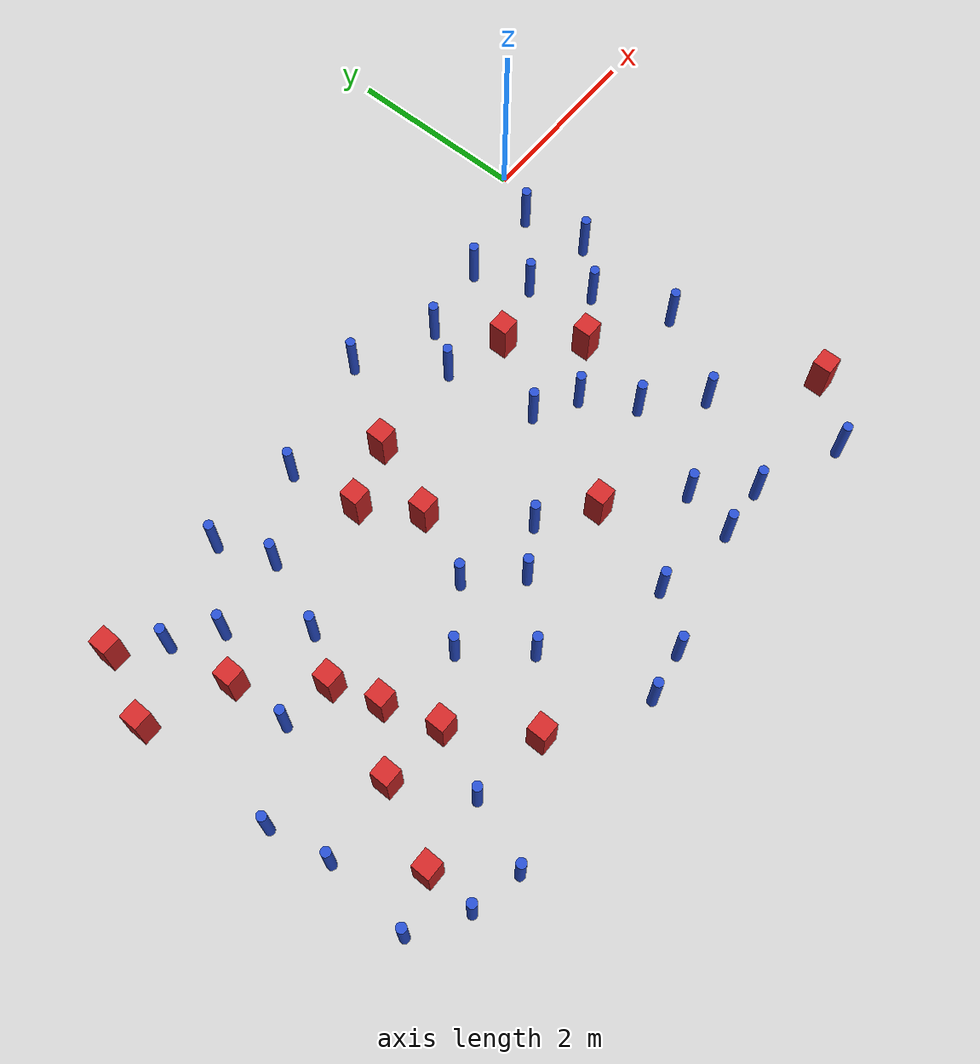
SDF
<sdf version="1.6">
 <world name="default">
  <model name="ground_plane">
   <static>1</static>
   <link name="link">
    <collision name="collision">
     <geometry><plane><normal>0 0 1</normal><size>100 100</size></plane></geometry>
     <surface><friction><ode><mu>100</mu><mu2>50</mu2></ode></friction></surface>
    </collision>
    <visual name="visual">
     <cast_shadows>0</cast_shadows>
     <geometry><plane><normal>0 0 1</normal><size>100 100</size></plane></geometry>
     <material>
      <ambient>1.0 1.0 1.0 1.0</ambient>
      <diffuse>0.8 0.8 0.8 1.0</diffuse>
      <specular>0.01 0.01 0.01 1.000000</specular>
     </material>
    </visual>
   </link>
  </model>
  <model name="square_post_obstacle0">
   <static>true</static>
   <pose>-1.67822141153 -1.31665792299 -6.11067671241e-07 -5.50515727128e-06 -8.79689657224e-07 2.37013304536e-05</pose>
   <link name="link">
    <pose>0 0 0.25 0 -0 0</pose>
    <inertial>
     <mass>100</mass>
     <inertia>
      <ixx>0.166667</ixx>
      <ixy>0</ixy>
      <ixz>0</ixz>
      <iyy>0.166667</iyy>
      <iyz>0</iyz>
      <izz>0.166667</izz>
     </inertia>
    </inertial>
    <collision name="collision"><geometry><box><size>.2 .2 .5</size></box></geometry></collision>
    <visual name="visual">
     <geometry><box><size>.2 .2 .5</size></box></geometry>
     <material>
      <script><name>Gazebo/Red</name><uri>file://media/materials/scripts/gazebo.material</uri></script>
     </material>
    </visual>
   </link>
  </model>
  <model name="pole_obstacle5">
   <static>true</static>
   <pose>-6.22073682573 -0.947302004882 -9.47619616065e-06 5.49618799737e-07 2.36310414061e-07 -1.550905348e-07</pose>
   <link name="link">
    <pose>0 0 0.3 0 -0 0</pose>
    <inertial>
     <mass>1</mass>
     <inertia><ixx>0.145833</ixx><ixy>0</ixy><ixz>0</ixz><iyy>0.145833</iyy><iyz>0</iyz><izz>0.125</izz></inertia>
    </inertial>
    <collision name="collision">
     <geometry><cylinder><radius>0.05</radius><length>.6</length></cylinder></geometry>
    </collision>
    <visual name="visual">
     <geometry><cylinder><radius>0.05</radius><length>.6</length></cylinder></geometry>
     <material>
      <script><name>Gazebo/Blue</name><uri>file://media/materials/scripts/gazebo.material</uri></script>
     </material>
    </visual>
   </link>
  </model>
  <model name="square_post_obstacle6">
   <static>true</static>
   <pose>-5.55545199859 -2.38299773573 -6.11067671241e-07 -5.50515727128e-06 -8.79689657224e-07 2.37013304536e-05</pose>
   <link name="link">
    <pose>0 0 0.25 0 -0 0</pose>
    <inertial>
     <mass>100</mass>
     <inertia>
      <ixx>0.166667</ixx>
      <ixy>0</ixy>
      <ixz>0</ixz>
      <iyy>0.166667</iyy>
      <iyz>0</iyz>
      <izz>0.166667</izz>
     </inertia>
    </inertial>
    <collision name="collision"><geometry><box><size>.2 .2 .5</size></box></geometry></collision>
    <visual name="visual">
     <geometry><box><size>.2 .2 .5</size></box></geometry>
     <material>
      <script><name>Gazebo/Red</name><uri>file://media/materials/scripts/gazebo.material</uri></script>
     </material>
    </visual>
   </link>
  </model>
  <model name="pole_obstacle20">
   <static>true</static>
   <pose>-1.88740554984 -3.82218988211 -9.47619616065e-06 5.49618799737e-07 2.36310414062e-07 -1.55090534798e-07</pose>
   <link name="link">
    <pose>0 0 0.3 0 -0 0</pose>
    <inertial>
     <mass>1</mass>
     <inertia><ixx>0.145833</ixx><ixy>0</ixy><ixz>0</ixz><iyy>0.145833</iyy><iyz>0</iyz><izz>0.125</izz></inertia>
    </inertial>
    <collision name="collision">
     <geometry><cylinder><radius>0.05</radius><length>.6</length></cylinder></geometry>
    </collision>
    <visual name="visual">
     <geometry><cylinder><radius>0.05</radius><length>.6</length></cylinder></geometry>
     <material>
      <script><name>Gazebo/Blue</name><uri>file://media/materials/scripts/gazebo.material</uri></script>
     </material>
    </visual>
   </link>
  </model>
  <model name="pole_obstacle34">
   <static>true</static>
   <pose>-4.98188013395 -1.15456743274 -9.47619616065e-06 5.49618799738e-07 2.36310414071e-07 -1.55090534796e-07</pose>
   <link name="link">
    <pose>0 0 0.3 0 -0 0</pose>
    <inertial>
     <mass>1</mass>
     <inertia><ixx>0.145833</ixx><ixy>0</ixy><ixz>0</ixz><iyy>0.145833</iyy><iyz>0</iyz><izz>0.125</izz></inertia>
    </inertial>
    <collision name="collision">
     <geometry><cylinder><radius>0.05</radius><length>.6</length></cylinder></geometry>
    </collision>
    <visual name="visual">
     <geometry><cylinder><radius>0.05</radius><length>.6</length></cylinder></geometry>
     <material>
      <script><name>Gazebo/Blue</name><uri>file://media/materials/scripts/gazebo.material</uri></script>
     </material>
    </visual>
   </link>
  </model>
  <model name="pole_obstacle36">
   <static>true</static>
   <pose>-4.17174899389 -0.638260095286 -9.47619616065e-06 5.49618799737e-07 2.36310414061e-07 -1.550905348e-07</pose>
   <link name="link">
    <pose>0 0 0.3 0 -0 0</pose>
    <inertial>
     <mass>1</mass>
     <inertia><ixx>0.145833</ixx><ixy>0</ixy><ixz>0</ixz><iyy>0.145833</iyy><iyz>0</iyz><izz>0.125</izz></inertia>
    </inertial>
    <collision name="collision">
     <geometry><cylinder><radius>0.05</radius><length>.6</length></cylinder></geometry>
    </collision>
    <visual name="visual">
     <geometry><cylinder><radius>0.05</radius><length>.6</length></cylinder></geometry>
     <material>
      <script><name>Gazebo/Blue</name><uri>file://media/materials/scripts/gazebo.material</uri></script>
     </material>
    </visual>
   </link>
  </model>
  <model name="pole_obstacle37">
   <static>true</static>
   <pose>-0.537551971657 -4.68976957517 -9.47619616065e-06 5.49618799737e-07 2.36310414069e-07 -1.55090534794e-07</pose>
   <link name="link">
    <pose>0 0 0.3 0 -0 0</pose>
    <inertial>
     <mass>1</mass>
     <inertia><ixx>0.145833</ixx><ixy>0</ixy><ixz>0</ixz><iyy>0.145833</iyy><iyz>0</iyz><izz>0.125</izz></inertia>
    </inertial>
    <collision name="collision">
     <geometry><cylinder><radius>0.05</radius><length>.6</length></cylinder></geometry>
    </collision>
    <visual name="visual">
     <geometry><cylinder><radius>0.05</radius><length>.6</length></cylinder></geometry>
     <material>
      <script><name>Gazebo/Blue</name><uri>file://media/materials/scripts/gazebo.material</uri></script>
     </material>
    </visual>
   </link>
  </model>
  <model name="square_post_obstacle34">
   <static>true</static>
   <pose>-5.39726971908 -2.87357324835 -6.11067671241e-07 -5.50515727128e-06 -8.79689657224e-07 2.37013304536e-05</pose>
   <link name="link">
    <pose>0 0 0.25 0 -0 0</pose>
    <inertial>
     <mass>100</mass>
     <inertia>
      <ixx>0.166667</ixx>
      <ixy>0</ixy>
      <ixz>0</ixz>
      <iyy>0.166667</iyy>
      <iyz>0</iyz>
      <izz>0.166667</izz>
     </inertia>
    </inertial>
    <collision name="collision"><geometry><box><size>.2 .2 .5</size></box></geometry></collision>
    <visual name="visual">
     <geometry><box><size>.2 .2 .5</size></box></geometry>
     <material>
      <script><name>Gazebo/Red</name><uri>file://media/materials/scripts/gazebo.material</uri></script>
     </material>
    </visual>
   </link>
  </model>
  <model name="square_post_obstacle37">
   <static>true</static>
   <pose>-2.56513791748 -3.22094641202 -6.11067671241e-07 -5.50515727128e-06 -8.79689657224e-07 2.37013304536e-05</pose>
   <link name="link">
    <pose>0 0 0.25 0 -0 0</pose>
    <inertial>
     <mass>100</mass>
     <inertia>
      <ixx>0.166667</ixx>
      <ixy>0</ixy>
      <ixz>0</ixz>
      <iyy>0.166667</iyy>
      <iyz>0</iyz>
      <izz>0.166667</izz>
     </inertia>
    </inertial>
    <collision name="collision"><geometry><box><size>.2 .2 .5</size></box></geometry></collision>
    <visual name="visual">
     <geometry><box><size>.2 .2 .5</size></box></geometry>
     <material>
      <script><name>Gazebo/Red</name><uri>file://media/materials/scripts/gazebo.material</uri></script>
     </material>
    </visual>
   </link>
  </model>
  <model name="pole_obstacle49">
   <static>true</static>
   <pose>-5.20192478778 -0.582303866172 -9.47619616065e-06 5.49618799737e-07 2.36310414061e-07 -1.550905348e-07</pose>
   <link name="link">
    <pose>0 0 0.3 0 -0 0</pose>
    <inertial>
     <mass>1</mass>
     <inertia><ixx>0.145833</ixx><ixy>0</ixy><ixz>0</ixz><iyy>0.145833</iyy><iyz>0</iyz><izz>0.125</izz></inertia>
    </inertial>
    <collision name="collision">
     <geometry><cylinder><radius>0.05</radius><length>.6</length></cylinder></geometry>
    </collision>
    <visual name="visual">
     <geometry><cylinder><radius>0.05</radius><length>.6</length></cylinder></geometry>
     <material>
      <script><name>Gazebo/Blue</name><uri>file://media/materials/scripts/gazebo.material</uri></script>
     </material>
    </visual>
   </link>
  </model>
  <model name="pole_obstacle52">
   <static>true</static>
   <pose>-0.213420351483 -1.24795859312 -9.47619616065e-06 5.49618799738e-07 2.36310414065e-07 -1.55090534798e-07</pose>
   <link name="link">
    <pose>0 0 0.3 0 -0 0</pose>
    <inertial>
     <mass>1</mass>
     <inertia><ixx>0.145833</ixx><ixy>0</ixy><ixz>0</ixz><iyy>0.145833</iyy><iyz>0</iyz><izz>0.125</izz></inertia>
    </inertial>
    <collision name="collision">
     <geometry><cylinder><radius>0.05</radius><length>.6</length></cylinder></geometry>
    </collision>
    <visual name="visual">
     <geometry><cylinder><radius>0.05</radius><length>.6</length></cylinder></geometry>
     <material>
      <script><name>Gazebo/Blue</name><uri>file://media/materials/scripts/gazebo.material</uri></script>
     </material>
    </visual>
   </link>
  </model>
  <model name="pole_obstacle53">
   <static>true</static>
   <pose>-1.44107021423 -4.31772078797 -9.47619616065e-06 5.49618799737e-07 2.36310414061e-07 -1.550905348e-07</pose>
   <link name="link">
    <pose>0 0 0.3 0 -0 0</pose>
    <inertial>
     <mass>1</mass>
     <inertia><ixx>0.145833</ixx><ixy>0</ixy><ixz>0</ixz><iyy>0.145833</iyy><iyz>0</iyz><izz>0.125</izz></inertia>
    </inertial>
    <collision name="collision">
     <geometry><cylinder><radius>0.05</radius><length>.6</length></cylinder></geometry>
    </collision>
    <visual name="visual">
     <geometry><cylinder><radius>0.05</radius><length>.6</length></cylinder></geometry>
     <material>
      <script><name>Gazebo/Blue</name><uri>file://media/materials/scripts/gazebo.material</uri></script>
     </material>
    </visual>
   </link>
  </model>
  <model name="pole_obstacle55">
   <static>true</static>
   <pose>-3.2772325764 -4.69066207636 -9.47619616065e-06 5.49618799738e-07 2.3631041406e-07 -1.55090534801e-07</pose>
   <link name="link">
    <pose>0 0 0.3 0 -0 0</pose>
    <inertial>
     <mass>1</mass>
     <inertia><ixx>0.145833</ixx><ixy>0</ixy><ixz>0</ixz><iyy>0.145833</iyy><iyz>0</iyz><izz>0.125</izz></inertia>
    </inertial>
    <collision name="collision">
     <geometry><cylinder><radius>0.05</radius><length>.6</length></cylinder></geometry>
    </collision>
    <visual name="visual">
     <geometry><cylinder><radius>0.05</radius><length>.6</length></cylinder></geometry>
     <material>
      <script><name>Gazebo/Blue</name><uri>file://media/materials/scripts/gazebo.material</uri></script>
     </material>
    </visual>
   </link>
  </model>
  <model name="pole_obstacle56">
   <static>true</static>
   <pose>-6.09087188984 -2.30584753257 -9.47619616065e-06 5.49618799738e-07 2.36310414051e-07 -1.55090534805e-07</pose>
   <link name="link">
    <pose>0 0 0.3 0 -0 0</pose>
    <inertial>
     <mass>1</mass>
     <inertia><ixx>0.145833</ixx><ixy>0</ixy><ixz>0</ixz><iyy>0.145833</iyy><iyz>0</iyz><izz>0.125</izz></inertia>
    </inertial>
    <collision name="collision">
     <geometry><cylinder><radius>0.05</radius><length>.6</length></cylinder></geometry>
    </collision>
    <visual name="visual">
     <geometry><cylinder><radius>0.05</radius><length>.6</length></cylinder></geometry>
     <material>
      <script><name>Gazebo/Blue</name><uri>file://media/materials/scripts/gazebo.material</uri></script>
     </material>
    </visual>
   </link>
  </model>
  <model name="pole_obstacle59">
   <static>true</static>
   <pose>-2.86834670329 -4.20039807069 -9.47619616065e-06 5.49618799738e-07 2.3631041406e-07 -1.55090534801e-07</pose>
   <link name="link">
    <pose>0 0 0.3 0 -0 0</pose>
    <inertial>
     <mass>1</mass>
     <inertia><ixx>0.145833</ixx><ixy>0</ixy><ixz>0</ixz><iyy>0.145833</iyy><iyz>0</iyz><izz>0.125</izz></inertia>
    </inertial>
    <collision name="collision">
     <geometry><cylinder><radius>0.05</radius><length>.6</length></cylinder></geometry>
    </collision>
    <visual name="visual">
     <geometry><cylinder><radius>0.05</radius><length>.6</length></cylinder></geometry>
     <material>
      <script><name>Gazebo/Blue</name><uri>file://media/materials/scripts/gazebo.material</uri></script>
     </material>
    </visual>
   </link>
  </model>
  <model name="pole_obstacle69">
   <static>true</static>
   <pose>-1.99657508054 -4.3554567736 -9.47619616065e-06 5.49618799737e-07 2.36310414064e-07 -1.55090534797e-07</pose>
   <link name="link">
    <pose>0 0 0.3 0 -0 0</pose>
    <inertial>
     <mass>1</mass>
     <inertia><ixx>0.145833</ixx><ixy>0</ixy><ixz>0</ixz><iyy>0.145833</iyy><iyz>0</iyz><izz>0.125</izz></inertia>
    </inertial>
    <collision name="collision">
     <geometry><cylinder><radius>0.05</radius><length>.6</length></cylinder></geometry>
    </collision>
    <visual name="visual">
     <geometry><cylinder><radius>0.05</radius><length>.6</length></cylinder></geometry>
     <material>
      <script><name>Gazebo/Blue</name><uri>file://media/materials/scripts/gazebo.material</uri></script>
     </material>
    </visual>
   </link>
  </model>
  <model name="pole_obstacle70">
   <static>true</static>
   <pose>-1.71871039825 -2.33494152029 -9.47619616065e-06 5.49618799737e-07 2.36310414062e-07 -1.55090534798e-07</pose>
   <link name="link">
    <pose>0 0 0.3 0 -0 0</pose>
    <inertial>
     <mass>1</mass>
     <inertia><ixx>0.145833</ixx><ixy>0</ixy><ixz>0</ixz><iyy>0.145833</iyy><iyz>0</iyz><izz>0.125</izz></inertia>
    </inertial>
    <collision name="collision">
     <geometry><cylinder><radius>0.05</radius><length>.6</length></cylinder></geometry>
    </collision>
    <visual name="visual">
     <geometry><cylinder><radius>0.05</radius><length>.6</length></cylinder></geometry>
     <material>
      <script><name>Gazebo/Blue</name><uri>file://media/materials/scripts/gazebo.material</uri></script>
     </material>
    </visual>
   </link>
  </model>
  <model name="square_post_obstacle60">
   <static>true</static>
   <pose>-3.39481077881 -1.15391379529 -6.11067671241e-07 -5.50515727128e-06 -8.79689657224e-07 2.37013304536e-05</pose>
   <link name="link">
    <pose>0 0 0.25 0 -0 0</pose>
    <inertial>
     <mass>100</mass>
     <inertia>
      <ixx>0.166667</ixx>
      <ixy>0</ixy>
      <ixz>0</ixz>
      <iyy>0.166667</iyy>
      <iyz>0</iyz>
      <izz>0.166667</izz>
     </inertia>
    </inertial>
    <collision name="collision"><geometry><box><size>.2 .2 .5</size></box></geometry></collision>
    <visual name="visual">
     <geometry><box><size>.2 .2 .5</size></box></geometry>
     <material>
      <script><name>Gazebo/Red</name><uri>file://media/materials/scripts/gazebo.material</uri></script>
     </material>
    </visual>
   </link>
  </model>
  <model name="square_post_obstacle62">
   <static>true</static>
   <pose>-5.22337695562 -3.44295577672 -6.11067671241e-07 -5.50515727128e-06 -8.79689657224e-07 2.37013304536e-05</pose>
   <link name="link">
    <pose>0 0 0.25 0 -0 0</pose>
    <inertial>
     <mass>100</mass>
     <inertia>
      <ixx>0.166667</ixx>
      <ixy>0</ixy>
      <ixz>0</ixz>
      <iyy>0.166667</iyy>
      <iyz>0</iyz>
      <izz>0.166667</izz>
     </inertia>
    </inertial>
    <collision name="collision"><geometry><box><size>.2 .2 .5</size></box></geometry></collision>
    <visual name="visual">
     <geometry><box><size>.2 .2 .5</size></box></geometry>
     <material>
      <script><name>Gazebo/Red</name><uri>file://media/materials/scripts/gazebo.material</uri></script>
     </material>
    </visual>
   </link>
  </model>
  <model name="pole_obstacle75">
   <static>true</static>
   <pose>-2.87029575147 -0.305522929353 -9.47619616065e-06 5.49618799738e-07 2.36310414074e-07 -1.55090534794e-07</pose>
   <link name="link">
    <pose>0 0 0.3 0 -0 0</pose>
    <inertial>
     <mass>1</mass>
     <inertia><ixx>0.145833</ixx><ixy>0</ixy><ixz>0</ixz><iyy>0.145833</iyy><iyz>0</iyz><izz>0.125</izz></inertia>
    </inertial>
    <collision name="collision">
     <geometry><cylinder><radius>0.05</radius><length>.6</length></cylinder></geometry>
    </collision>
    <visual name="visual">
     <geometry><cylinder><radius>0.05</radius><length>.6</length></cylinder></geometry>
     <material>
      <script><name>Gazebo/Blue</name><uri>file://media/materials/scripts/gazebo.material</uri></script>
     </material>
    </visual>
   </link>
  </model>
  <model name="square_post_obstacle71">
   <static>true</static>
   <pose>-6.60892763147 -0.590196376219 -6.11067671241e-07 -5.50515727128e-06 -8.79689657224e-07 2.37013304536e-05</pose>
   <link name="link">
    <pose>0 0 0.25 0 -0 0</pose>
    <inertial>
     <mass>100</mass>
     <inertia>
      <ixx>0.166667</ixx>
      <ixy>0</ixy>
      <ixz>0</ixz>
      <iyy>0.166667</iyy>
      <iyz>0</iyz>
      <izz>0.166667</izz>
     </inertia>
    </inertial>
    <collision name="collision"><geometry><box><size>.2 .2 .5</size></box></geometry></collision>
    <visual name="visual">
     <geometry><box><size>.2 .2 .5</size></box></geometry>
     <material>
      <script><name>Gazebo/Red</name><uri>file://media/materials/scripts/gazebo.material</uri></script>
     </material>
    </visual>
   </link>
  </model>
  <model name="pole_obstacle85">
   <static>true</static>
   <pose>-4.11477809128 -3.6655479801 -9.47619616065e-06 5.49618799738e-07 2.36310414051e-07 -1.55090534805e-07</pose>
   <link name="link">
    <pose>0 0 0.3 0 -0 0</pose>
    <inertial>
     <mass>1</mass>
     <inertia><ixx>0.145833</ixx><ixy>0</ixy><ixz>0</ixz><iyy>0.145833</iyy><iyz>0</iyz><izz>0.125</izz></inertia>
    </inertial>
    <collision name="collision">
     <geometry><cylinder><radius>0.05</radius><length>.6</length></cylinder></geometry>
    </collision>
    <visual name="visual">
     <geometry><cylinder><radius>0.05</radius><length>.6</length></cylinder></geometry>
     <material>
      <script><name>Gazebo/Blue</name><uri>file://media/materials/scripts/gazebo.material</uri></script>
     </material>
    </visual>
   </link>
  </model>
  <model name="square_post_obstacle77">
   <static>true</static>
   <pose>-6.27691844453 -4.16599310079 -6.11067671241e-07 -5.50515727128e-06 -8.79689657224e-07 2.37013304536e-05</pose>
   <link name="link">
    <pose>0 0 0.25 0 -0 0</pose>
    <inertial>
     <mass>100</mass>
     <inertia>
      <ixx>0.166667</ixx>
      <ixy>0</ixy>
      <ixz>0</ixz>
      <iyy>0.166667</iyy>
      <iyz>0</iyz>
      <izz>0.166667</izz>
     </inertia>
    </inertial>
    <collision name="collision"><geometry><box><size>.2 .2 .5</size></box></geometry></collision>
    <visual name="visual">
     <geometry><box><size>.2 .2 .5</size></box></geometry>
     <material>
      <script><name>Gazebo/Red</name><uri>file://media/materials/scripts/gazebo.material</uri></script>
     </material>
    </visual>
   </link>
  </model>
  <model name="square_post_obstacle87">
   <static>true</static>
   <pose>-5.90055543002 -3.37409761702 -6.11067671241e-07 -5.50515727128e-06 -8.79689657224e-07 2.37013304536e-05</pose>
   <link name="link">
    <pose>0 0 0.25 0 -0 0</pose>
    <inertial>
     <mass>100</mass>
     <inertia>
      <ixx>0.166667</ixx>
      <ixy>0</ixy>
      <ixz>0</ixz>
      <iyy>0.166667</iyy>
      <iyz>0</iyz>
      <izz>0.166667</izz>
     </inertia>
    </inertial>
    <collision name="collision"><geometry><box><size>.2 .2 .5</size></box></geometry></collision>
    <visual name="visual">
     <geometry><box><size>.2 .2 .5</size></box></geometry>
     <material>
      <script><name>Gazebo/Red</name><uri>file://media/materials/scripts/gazebo.material</uri></script>
     </material>
    </visual>
   </link>
  </model>
  <model name="pole_obstacle95">
   <static>true</static>
   <pose>-1.20823036221 -0.5436516674 -9.47619616065e-06 5.49618799737e-07 2.3631041406e-07 -1.55090534801e-07</pose>
   <link name="link">
    <pose>0 0 0.3 0 -0 0</pose>
    <inertial>
     <mass>1</mass>
     <inertia><ixx>0.145833</ixx><ixy>0</ixy><ixz>0</ixz><iyy>0.145833</iyy><iyz>0</iyz><izz>0.125</izz></inertia>
    </inertial>
    <collision name="collision">
     <geometry><cylinder><radius>0.05</radius><length>.6</length></cylinder></geometry>
    </collision>
    <visual name="visual">
     <geometry><cylinder><radius>0.05</radius><length>.6</length></cylinder></geometry>
     <material>
      <script><name>Gazebo/Blue</name><uri>file://media/materials/scripts/gazebo.material</uri></script>
     </material>
    </visual>
   </link>
  </model>
  <model name="pole_obstacle99">
   <static>true</static>
   <pose>-5.79868575609 -1.25757517983 -9.47619616065e-06 5.49618799738e-07 2.36310414071e-07 -1.55090534796e-07</pose>
   <link name="link">
    <pose>0 0 0.3 0 -0 0</pose>
    <inertial>
     <mass>1</mass>
     <inertia><ixx>0.145833</ixx><ixy>0</ixy><ixz>0</ixz><iyy>0.145833</iyy><iyz>0</iyz><izz>0.125</izz></inertia>
    </inertial>
    <collision name="collision">
     <geometry><cylinder><radius>0.05</radius><length>.6</length></cylinder></geometry>
    </collision>
    <visual name="visual">
     <geometry><cylinder><radius>0.05</radius><length>.6</length></cylinder></geometry>
     <material>
      <script><name>Gazebo/Blue</name><uri>file://media/materials/scripts/gazebo.material</uri></script>
     </material>
    </visual>
   </link>
  </model>
  <model name="pole_obstacle100">
   <static>true</static>
   <pose>-0.315651464605 -0.534938987825 -9.47619616065e-06 5.49618799737e-07 2.36310414058e-07 -1.55090534802e-07</pose>
   <link name="link">
    <pose>0 0 0.3 0 -0 0</pose>
    <inertial>
     <mass>1</mass>
     <inertia><ixx>0.145833</ixx><ixy>0</ixy><ixz>0</ixz><iyy>0.145833</iyy><iyz>0</iyz><izz>0.125</izz></inertia>
    </inertial>
    <collision name="collision">
     <geometry><cylinder><radius>0.05</radius><length>.6</length></cylinder></geometry>
    </collision>
    <visual name="visual">
     <geometry><cylinder><radius>0.05</radius><length>.6</length></cylinder></geometry>
     <material>
      <script><name>Gazebo/Blue</name><uri>file://media/materials/scripts/gazebo.material</uri></script>
     </material>
    </visual>
   </link>
  </model>
  <model name="square_post_obstacle110">
   <static>true</static>
   <pose>0.0132974201553 -4.11458470828 -6.11067671241e-07 -5.50515727128e-06 -8.79689657224e-07 2.37013304536e-05</pose>
   <link name="link">
    <pose>0 0 0.25 0 -0 0</pose>
    <inertial>
     <mass>100</mass>
     <inertia>
      <ixx>0.166667</ixx>
      <ixy>0</ixy>
      <ixz>0</ixz>
      <iyy>0.166667</iyy>
      <iyz>0</iyz>
      <izz>0.166667</izz>
     </inertia>
    </inertial>
    <collision name="collision"><geometry><box><size>.2 .2 .5</size></box></geometry></collision>
    <visual name="visual">
     <geometry><box><size>.2 .2 .5</size></box></geometry>
     <material>
      <script><name>Gazebo/Red</name><uri>file://media/materials/scripts/gazebo.material</uri></script>
     </material>
    </visual>
   </link>
  </model>
  <model name="pole_obstacle117">
   <static>true</static>
   <pose>-0.344947234585 -2.49652391616 -9.47619616065e-06 5.49618799738e-07 2.36310414065e-07 -1.55090534798e-07</pose>
   <link name="link">
    <pose>0 0 0.3 0 -0 0</pose>
    <inertial>
     <mass>1</mass>
     <inertia><ixx>0.145833</ixx><ixy>0</ixy><ixz>0</ixz><iyy>0.145833</iyy><iyz>0</iyz><izz>0.125</izz></inertia>
    </inertial>
    <collision name="collision">
     <geometry><cylinder><radius>0.05</radius><length>.6</length></cylinder></geometry>
    </collision>
    <visual name="visual">
     <geometry><cylinder><radius>0.05</radius><length>.6</length></cylinder></geometry>
     <material>
      <script><name>Gazebo/Blue</name><uri>file://media/materials/scripts/gazebo.material</uri></script>
     </material>
    </visual>
   </link>
  </model>
  <model name="pole_obstacle121">
   <static>true</static>
   <pose>-3.57043780502 -3.12959722039 -9.47619616065e-06 5.49618799737e-07 2.36310414051e-07 -1.55090534807e-07</pose>
   <link name="link">
    <pose>0 0 0.3 0 -0 0</pose>
    <inertial>
     <mass>1</mass>
     <inertia><ixx>0.145833</ixx><ixy>0</ixy><ixz>0</ixz><iyy>0.145833</iyy><iyz>0</iyz><izz>0.125</izz></inertia>
    </inertial>
    <collision name="collision">
     <geometry><cylinder><radius>0.05</radius><length>.6</length></cylinder></geometry>
    </collision>
    <visual name="visual">
     <geometry><cylinder><radius>0.05</radius><length>.6</length></cylinder></geometry>
     <material>
      <script><name>Gazebo/Blue</name><uri>file://media/materials/scripts/gazebo.material</uri></script>
     </material>
    </visual>
   </link>
  </model>
  <model name="pole_obstacle124">
   <static>true</static>
   <pose>-4.01294883996 -2.66254225718 -9.47619616065e-06 5.49618799737e-07 2.36310414053e-07 -1.55090534804e-07</pose>
   <link name="link">
    <pose>0 0 0.3 0 -0 0</pose>
    <inertial>
     <mass>1</mass>
     <inertia><ixx>0.145833</ixx><ixy>0</ixy><ixz>0</ixz><iyy>0.145833</iyy><iyz>0</iyz><izz>0.125</izz></inertia>
    </inertial>
    <collision name="collision">
     <geometry><cylinder><radius>0.05</radius><length>.6</length></cylinder></geometry>
    </collision>
    <visual name="visual">
     <geometry><cylinder><radius>0.05</radius><length>.6</length></cylinder></geometry>
     <material>
      <script><name>Gazebo/Blue</name><uri>file://media/materials/scripts/gazebo.material</uri></script>
     </material>
    </visual>
   </link>
  </model>
  <model name="pole_obstacle125">
   <static>true</static>
   <pose>-0.987648244647 -1.12167573998 -9.47619616065e-06 5.49618799737e-07 2.36310414061e-07 -1.550905348e-07</pose>
   <link name="link">
    <pose>0 0 0.3 0 -0 0</pose>
    <inertial>
     <mass>1</mass>
     <inertia><ixx>0.145833</ixx><ixy>0</ixy><ixz>0</ixz><iyy>0.145833</iyy><iyz>0</iyz><izz>0.125</izz></inertia>
    </inertial>
    <collision name="collision">
     <geometry><cylinder><radius>0.05</radius><length>.6</length></cylinder></geometry>
    </collision>
    <visual name="visual">
     <geometry><cylinder><radius>0.05</radius><length>.6</length></cylinder></geometry>
     <material>
      <script><name>Gazebo/Blue</name><uri>file://media/materials/scripts/gazebo.material</uri></script>
     </material>
    </visual>
   </link>
  </model>
  <model name="square_post_obstacle123">
   <static>true</static>
   <pose>-6.11119733085 -1.67274290931 -6.11067671241e-07 -5.50515727128e-06 -8.79689657224e-07 2.37013304536e-05</pose>
   <link name="link">
    <pose>0 0 0.25 0 -0 0</pose>
    <inertial>
     <mass>100</mass>
     <inertia>
      <ixx>0.166667</ixx>
      <ixy>0</ixy>
      <ixz>0</ixz>
      <iyy>0.166667</iyy>
      <iyz>0</iyz>
      <izz>0.166667</izz>
     </inertia>
    </inertial>
    <collision name="collision"><geometry><box><size>.2 .2 .5</size></box></geometry></collision>
    <visual name="visual">
     <geometry><box><size>.2 .2 .5</size></box></geometry>
     <material>
      <script><name>Gazebo/Red</name><uri>file://media/materials/scripts/gazebo.material</uri></script>
     </material>
    </visual>
   </link>
  </model>
  <model name="pole_obstacle132">
   <static>true</static>
   <pose>-5.78105898852 -4.79577821183 -9.47619616065e-06 5.49618799737e-07 2.36310414037e-07 -1.55090534814e-07</pose>
   <link name="link">
    <pose>0 0 0.3 0 -0 0</pose>
    <inertial>
     <mass>1</mass>
     <inertia><ixx>0.145833</ixx><ixy>0</ixy><ixz>0</ixz><iyy>0.145833</iyy><iyz>0</iyz><izz>0.125</izz></inertia>
    </inertial>
    <collision name="collision">
     <geometry><cylinder><radius>0.05</radius><length>.6</length></cylinder></geometry>
    </collision>
    <visual name="visual">
     <geometry><cylinder><radius>0.05</radius><length>.6</length></cylinder></geometry>
     <material>
      <script><name>Gazebo/Blue</name><uri>file://media/materials/scripts/gazebo.material</uri></script>
     </material>
    </visual>
   </link>
  </model>
  <model name="pole_obstacle134">
   <static>true</static>
   <pose>-6.87732345011 -2.81840210452 -9.47619616065e-06 5.49618799738e-07 2.36310414051e-07 -1.55090534805e-07</pose>
   <link name="link">
    <pose>0 0 0.3 0 -0 0</pose>
    <inertial>
     <mass>1</mass>
     <inertia><ixx>0.145833</ixx><ixy>0</ixy><ixz>0</ixz><iyy>0.145833</iyy><iyz>0</iyz><izz>0.125</izz></inertia>
    </inertial>
    <collision name="collision">
     <geometry><cylinder><radius>0.05</radius><length>.6</length></cylinder></geometry>
    </collision>
    <visual name="visual">
     <geometry><cylinder><radius>0.05</radius><length>.6</length></cylinder></geometry>
     <material>
      <script><name>Gazebo/Blue</name><uri>file://media/materials/scripts/gazebo.material</uri></script>
     </material>
    </visual>
   </link>
  </model>
  <model name="pole_obstacle135">
   <static>true</static>
   <pose>-4.59123286626 -3.07126057455 -9.47619616065e-06 5.49618799738e-07 2.36310414051e-07 -1.55090534805e-07</pose>
   <link name="link">
    <pose>0 0 0.3 0 -0 0</pose>
    <inertial>
     <mass>1</mass>
     <inertia><ixx>0.145833</ixx><ixy>0</ixy><ixz>0</ixz><iyy>0.145833</iyy><iyz>0</iyz><izz>0.125</izz></inertia>
    </inertial>
    <collision name="collision">
     <geometry><cylinder><radius>0.05</radius><length>.6</length></cylinder></geometry>
    </collision>
    <visual name="visual">
     <geometry><cylinder><radius>0.05</radius><length>.6</length></cylinder></geometry>
     <material>
      <script><name>Gazebo/Blue</name><uri>file://media/materials/scripts/gazebo.material</uri></script>
     </material>
    </visual>
   </link>
  </model>
  <model name="square_post_obstacle138">
   <static>true</static>
   <pose>-4.71534585522 -4.19486057406 -6.11067671241e-07 -5.50515727128e-06 -8.79689657224e-07 2.37013304536e-05</pose>
   <link name="link">
    <pose>0 0 0.25 0 -0 0</pose>
    <inertial>
     <mass>100</mass>
     <inertia>
      <ixx>0.166667</ixx>
      <ixy>0</ixy>
      <ixz>0</ixz>
      <iyy>0.166667</iyy>
      <iyz>0</iyz>
      <izz>0.166667</izz>
     </inertia>
    </inertial>
    <collision name="collision"><geometry><box><size>.2 .2 .5</size></box></geometry></collision>
    <visual name="visual">
     <geometry><box><size>.2 .2 .5</size></box></geometry>
     <material>
      <script><name>Gazebo/Red</name><uri>file://media/materials/scripts/gazebo.material</uri></script>
     </material>
    </visual>
   </link>
  </model>
  <model name="pole_obstacle148">
   <static>true</static>
   <pose>-0.647295740438 -1.69159143927 -9.47619616065e-06 5.49618799738e-07 2.36310414061e-07 -1.55090534801e-07</pose>
   <link name="link">
    <pose>0 0 0.3 0 -0 0</pose>
    <inertial>
     <mass>1</mass>
     <inertia><ixx>0.145833</ixx><ixy>0</ixy><ixz>0</ixz><iyy>0.145833</iyy><iyz>0</iyz><izz>0.125</izz></inertia>
    </inertial>
    <collision name="collision">
     <geometry><cylinder><radius>0.05</radius><length>.6</length></cylinder></geometry>
    </collision>
    <visual name="visual">
     <geometry><cylinder><radius>0.05</radius><length>.6</length></cylinder></geometry>
     <material>
      <script><name>Gazebo/Blue</name><uri>file://media/materials/scripts/gazebo.material</uri></script>
     </material>
    </visual>
   </link>
  </model>
  <model name="pole_obstacle149">
   <static>true</static>
   <pose>-2.02575426372 -0.680253716236 -9.47619616065e-06 5.49618799738e-07 2.36310414063e-07 -1.550905348e-07</pose>
   <link name="link">
    <pose>0 0 0.3 0 -0 0</pose>
    <inertial>
     <mass>1</mass>
     <inertia><ixx>0.145833</ixx><ixy>0</ixy><ixz>0</ixz><iyy>0.145833</iyy><iyz>0</iyz><izz>0.125</izz></inertia>
    </inertial>
    <collision name="collision">
     <geometry><cylinder><radius>0.05</radius><length>.6</length></cylinder></geometry>
    </collision>
    <visual name="visual">
     <geometry><cylinder><radius>0.05</radius><length>.6</length></cylinder></geometry>
     <material>
      <script><name>Gazebo/Blue</name><uri>file://media/materials/scripts/gazebo.material</uri></script>
     </material>
    </visual>
   </link>
  </model>
  <model name="square_post_obstacle146">
   <static>true</static>
   <pose>-3.70366101991 -1.95248184449 -6.11067671241e-07 -5.50515727128e-06 -8.79689657224e-07 2.37013304536e-05</pose>
   <link name="link">
    <pose>0 0 0.25 0 -0 0</pose>
    <inertial>
     <mass>100</mass>
     <inertia>
      <ixx>0.166667</ixx>
      <ixy>0</ixy>
      <ixz>0</ixz>
      <iyy>0.166667</iyy>
      <iyz>0</iyz>
      <izz>0.166667</izz>
     </inertia>
    </inertial>
    <collision name="collision"><geometry><box><size>.2 .2 .5</size></box></geometry></collision>
    <visual name="visual">
     <geometry><box><size>.2 .2 .5</size></box></geometry>
     <material>
      <script><name>Gazebo/Red</name><uri>file://media/materials/scripts/gazebo.material</uri></script>
     </material>
    </visual>
   </link>
  </model>
  <model name="pole_obstacle158">
   <static>true</static>
   <pose>-0.89988663505 -3.35447380434 -9.47619616065e-06 5.49618799737e-07 2.36310414066e-07 -1.55090534797e-07</pose>
   <link name="link">
    <pose>0 0 0.3 0 -0 0</pose>
    <inertial>
     <mass>1</mass>
     <inertia><ixx>0.145833</ixx><ixy>0</ixy><ixz>0</ixz><iyy>0.145833</iyy><iyz>0</iyz><izz>0.125</izz></inertia>
    </inertial>
    <collision name="collision">
     <geometry><cylinder><radius>0.05</radius><length>.6</length></cylinder></geometry>
    </collision>
    <visual name="visual">
     <geometry><cylinder><radius>0.05</radius><length>.6</length></cylinder></geometry>
     <material>
      <script><name>Gazebo/Blue</name><uri>file://media/materials/scripts/gazebo.material</uri></script>
     </material>
    </visual>
   </link>
  </model>
  <model name="pole_obstacle163">
   <static>true</static>
   <pose>-3.09964703727 -2.84298018473 -9.47619616065e-06 5.49618799737e-07 2.36310414051e-07 -1.55090534807e-07</pose>
   <link name="link">
    <pose>0 0 0.3 0 -0 0</pose>
    <inertial>
     <mass>1</mass>
     <inertia><ixx>0.145833</ixx><ixy>0</ixy><ixz>0</ixz><iyy>0.145833</iyy><iyz>0</iyz><izz>0.125</izz></inertia>
    </inertial>
    <collision name="collision">
     <geometry><cylinder><radius>0.05</radius><length>.6</length></cylinder></geometry>
    </collision>
    <visual name="visual">
     <geometry><cylinder><radius>0.05</radius><length>.6</length></cylinder></geometry>
     <material>
      <script><name>Gazebo/Blue</name><uri>file://media/materials/scripts/gazebo.material</uri></script>
     </material>
    </visual>
   </link>
  </model>
  <model name="pole_obstacle164">
   <static>true</static>
   <pose>-2.31416321777 -1.10709877659 -9.47619616065e-06 5.49618799737e-07 2.36310414072e-07 -1.55090534793e-07</pose>
   <link name="link">
    <pose>0 0 0.3 0 -0 0</pose>
    <inertial>
     <mass>1</mass>
     <inertia><ixx>0.145833</ixx><ixy>0</ixy><ixz>0</ixz><iyy>0.145833</iyy><iyz>0</iyz><izz>0.125</izz></inertia>
    </inertial>
    <collision name="collision">
     <geometry><cylinder><radius>0.05</radius><length>.6</length></cylinder></geometry>
    </collision>
    <visual name="visual">
     <geometry><cylinder><radius>0.05</radius><length>.6</length></cylinder></geometry>
     <material>
      <script><name>Gazebo/Blue</name><uri>file://media/materials/scripts/gazebo.material</uri></script>
     </material>
    </visual>
   </link>
  </model>
  <model name="pole_obstacle173">
   <static>true</static>
   <pose>-6.81847549223 -4.34705844498 -9.47619616065e-06 5.49618799737e-07 2.36310414037e-07 -1.55090534814e-07</pose>
   <link name="link">
    <pose>0 0 0.3 0 -0 0</pose>
    <inertial>
     <mass>1</mass>
     <inertia><ixx>0.145833</ixx><ixy>0</ixy><ixz>0</ixz><iyy>0.145833</iyy><iyz>0</iyz><izz>0.125</izz></inertia>
    </inertial>
    <collision name="collision">
     <geometry><cylinder><radius>0.05</radius><length>.6</length></cylinder></geometry>
    </collision>
    <visual name="visual">
     <geometry><cylinder><radius>0.05</radius><length>.6</length></cylinder></geometry>
     <material>
      <script><name>Gazebo/Blue</name><uri>file://media/materials/scripts/gazebo.material</uri></script>
     </material>
    </visual>
   </link>
  </model>
  <model name="pole_obstacle175">
   <static>true</static>
   <pose>-1.41850659196 -2.86504534646 -9.47619616065e-06 5.49618799737e-07 2.36310414062e-07 -1.55090534798e-07</pose>
   <link name="link">
    <pose>0 0 0.3 0 -0 0</pose>
    <inertial>
     <mass>1</mass>
     <inertia><ixx>0.145833</ixx><ixy>0</ixy><ixz>0</ixz><iyy>0.145833</iyy><iyz>0</iyz><izz>0.125</izz></inertia>
    </inertial>
    <collision name="collision">
     <geometry><cylinder><radius>0.05</radius><length>.6</length></cylinder></geometry>
    </collision>
    <visual name="visual">
     <geometry><cylinder><radius>0.05</radius><length>.6</length></cylinder></geometry>
     <material>
      <script><name>Gazebo/Blue</name><uri>file://media/materials/scripts/gazebo.material</uri></script>
     </material>
    </visual>
   </link>
  </model>
  <model name="pole_obstacle180">
   <static>true</static>
   <pose>-2.15762166283 -2.08663562839 -9.47619616065e-06 5.49618799737e-07 2.36310414051e-07 -1.55090534807e-07</pose>
   <link name="link">
    <pose>0 0 0.3 0 -0 0</pose>
    <inertial>
     <mass>1</mass>
     <inertia><ixx>0.145833</ixx><ixy>0</ixy><ixz>0</ixz><iyy>0.145833</iyy><iyz>0</iyz><izz>0.125</izz></inertia>
    </inertial>
    <collision name="collision">
     <geometry><cylinder><radius>0.05</radius><length>.6</length></cylinder></geometry>
    </collision>
    <visual name="visual">
     <geometry><cylinder><radius>0.05</radius><length>.6</length></cylinder></geometry>
     <material>
      <script><name>Gazebo/Blue</name><uri>file://media/materials/scripts/gazebo.material</uri></script>
     </material>
    </visual>
   </link>
  </model>
  <model name="pole_obstacle186">
   <static>true</static>
   <pose>-6.75361558802 -3.44765006515 -9.47619616065e-06 5.49618799738e-07 2.36310414051e-07 -1.55090534805e-07</pose>
   <link name="link">
    <pose>0 0 0.3 0 -0 0</pose>
    <inertial>
     <mass>1</mass>
     <inertia><ixx>0.145833</ixx><ixy>0</ixy><ixz>0</ixz><iyy>0.145833</iyy><iyz>0</iyz><izz>0.125</izz></inertia>
    </inertial>
    <collision name="collision">
     <geometry><cylinder><radius>0.05</radius><length>.6</length></cylinder></geometry>
    </collision>
    <visual name="visual">
     <geometry><cylinder><radius>0.05</radius><length>.6</length></cylinder></geometry>
     <material>
      <script><name>Gazebo/Blue</name><uri>file://media/materials/scripts/gazebo.material</uri></script>
     </material>
    </visual>
   </link>
  </model>
  <model name="square_post_obstacle187">
   <static>true</static>
   <pose>-1.16340861368 -1.99460379295 -6.11067671241e-07 -5.50515727128e-06 -8.79689657224e-07 2.37013304536e-05</pose>
   <link name="link">
    <pose>0 0 0.25 0 -0 0</pose>
    <inertial>
     <mass>100</mass>
     <inertia>
      <ixx>0.166667</ixx>
      <ixy>0</ixy>
      <ixz>0</ixz>
      <iyy>0.166667</iyy>
      <iyz>0</iyz>
      <izz>0.166667</izz>
     </inertia>
    </inertial>
    <collision name="collision"><geometry><box><size>.2 .2 .5</size></box></geometry></collision>
    <visual name="visual">
     <geometry><box><size>.2 .2 .5</size></box></geometry>
     <material>
      <script><name>Gazebo/Red</name><uri>file://media/materials/scripts/gazebo.material</uri></script>
     </material>
    </visual>
   </link>
  </model>
  <model name="square_post_obstacle202">
   <static>true</static>
   <pose>-6.92219962366 -1.30832324813 -6.11067671241e-07 -5.50515727128e-06 -8.79689657224e-07 2.37013304536e-05</pose>
   <link name="link">
    <pose>0 0 0.25 0 -0 0</pose>
    <inertial>
     <mass>100</mass>
     <inertia>
      <ixx>0.166667</ixx>
      <ixy>0</ixy>
      <ixz>0</ixz>
      <iyy>0.166667</iyy>
      <iyz>0</iyz>
      <izz>0.166667</izz>
     </inertia>
    </inertial>
    <collision name="collision"><geometry><box><size>.2 .2 .5</size></box></geometry></collision>
    <visual name="visual">
     <geometry><box><size>.2 .2 .5</size></box></geometry>
     <material>
      <script><name>Gazebo/Red</name><uri>file://media/materials/scripts/gazebo.material</uri></script>
     </material>
    </visual>
   </link>
  </model>
  <model name="square_post_obstacle204">
   <static>true</static>
   <pose>-4.04997657367 -1.38414844178 -6.11067671241e-07 -5.50515727128e-06 -8.79689657224e-07 2.37013304536e-05</pose>
   <link name="link">
    <pose>0 0 0.25 0 -0 0</pose>
    <inertial>
     <mass>100</mass>
     <inertia>
      <ixx>0.166667</ixx>
      <ixy>0</ixy>
      <ixz>0</ixz>
      <iyy>0.166667</iyy>
      <iyz>0</iyz>
      <izz>0.166667</izz>
     </inertia>
    </inertial>
    <collision name="collision"><geometry><box><size>.2 .2 .5</size></box></geometry></collision>
    <visual name="visual">
     <geometry><box><size>.2 .2 .5</size></box></geometry>
     <material>
      <script><name>Gazebo/Red</name><uri>file://media/materials/scripts/gazebo.material</uri></script>
     </material>
    </visual>
   </link>
  </model>
  <model name="pole_obstacle200">
   <static>true</static>
   <pose>-5.51207427529 -4.09471783053 -9.47619616065e-06 5.49618799737e-07 2.36310414037e-07 -1.55090534814e-07</pose>
   <link name="link">
    <pose>0 0 0.3 0 -0 0</pose>
    <inertial>
     <mass>1</mass>
     <inertia><ixx>0.145833</ixx><ixy>0</ixy><ixz>0</ixz><iyy>0.145833</iyy><iyz>0</iyz><izz>0.125</izz></inertia>
    </inertial>
    <collision name="collision">
     <geometry><cylinder><radius>0.05</radius><length>.6</length></cylinder></geometry>
    </collision>
    <visual name="visual">
     <geometry><cylinder><radius>0.05</radius><length>.6</length></cylinder></geometry>
     <material>
      <script><name>Gazebo/Blue</name><uri>file://media/materials/scripts/gazebo.material</uri></script>
     </material>
    </visual>
   </link>
  </model>
  <model name="pole_obstacle202">
   <static>true</static>
   <pose>-5.276287804 -1.9200625017 -9.47619616065e-06 5.49618799738e-07 2.36310414071e-07 -1.55090534796e-07</pose>
   <link name="link">
    <pose>0 0 0.3 0 -0 0</pose>
    <inertial>
     <mass>1</mass>
     <inertia><ixx>0.145833</ixx><ixy>0</ixy><ixz>0</ixz><iyy>0.145833</iyy><iyz>0</iyz><izz>0.125</izz></inertia>
    </inertial>
    <collision name="collision">
     <geometry><cylinder><radius>0.05</radius><length>.6</length></cylinder></geometry>
    </collision>
    <visual name="visual">
     <geometry><cylinder><radius>0.05</radius><length>.6</length></cylinder></geometry>
     <material>
      <script><name>Gazebo/Blue</name><uri>file://media/materials/scripts/gazebo.material</uri></script>
     </material>
    </visual>
   </link>
  </model>
  <model name="pole_obstacle208">
   <static>true</static>
   <pose>-6.2962232116 -4.67661905466 -9.47619616065e-06 5.49618799737e-07 2.36310414037e-07 -1.55090534814e-07</pose>
   <link name="link">
    <pose>0 0 0.3 0 -0 0</pose>
    <inertial>
     <mass>1</mass>
     <inertia><ixx>0.145833</ixx><ixy>0</ixy><ixz>0</ixz><iyy>0.145833</iyy><iyz>0</iyz><izz>0.125</izz></inertia>
    </inertial>
    <collision name="collision">
     <geometry><cylinder><radius>0.05</radius><length>.6</length></cylinder></geometry>
    </collision>
    <visual name="visual">
     <geometry><cylinder><radius>0.05</radius><length>.6</length></cylinder></geometry>
     <material>
      <script><name>Gazebo/Blue</name><uri>file://media/materials/scripts/gazebo.material</uri></script>
     </material>
    </visual>
   </link>
  </model>
  <model name="pole_obstacle209">
   <static>true</static>
   <pose>-3.7727884685 -4.76847474215 -9.47619616065e-06 5.49618799738e-07 2.3631041406e-07 -1.55090534801e-07</pose>
   <link name="link">
    <pose>0 0 0.3 0 -0 0</pose>
    <inertial>
     <mass>1</mass>
     <inertia><ixx>0.145833</ixx><ixy>0</ixy><ixz>0</ixz><iyy>0.145833</iyy><iyz>0</iyz><izz>0.125</izz></inertia>
    </inertial>
    <collision name="collision">
     <geometry><cylinder><radius>0.05</radius><length>.6</length></cylinder></geometry>
    </collision>
    <visual name="visual">
     <geometry><cylinder><radius>0.05</radius><length>.6</length></cylinder></geometry>
     <material>
      <script><name>Gazebo/Blue</name><uri>file://media/materials/scripts/gazebo.material</uri></script>
     </material>
    </visual>
   </link>
  </model>
 </world>
</sdf>
